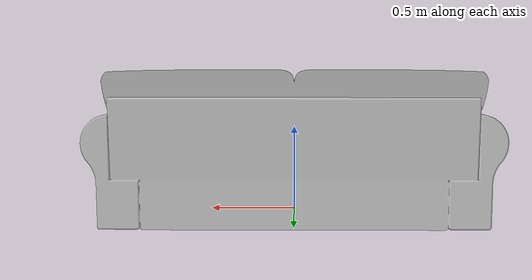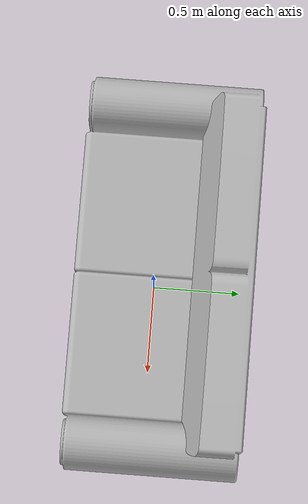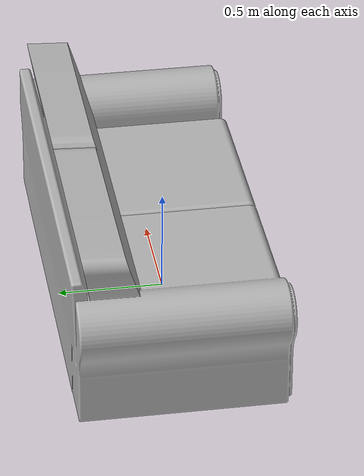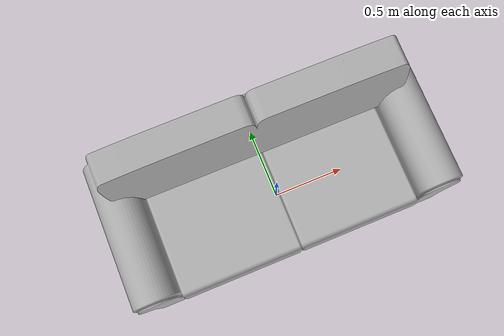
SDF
<?xml version="1.0"?>
<sdf version="1.4">
  <model name="couch">
    <static>false</static>
    <link name="link">

      <visual name="visual">
        <geometry>
          <mesh>
            <uri>model://couch/meshes/couch.dae</uri>
          </mesh>
        </geometry>
      </visual>

	<collision name="box">
	<pose>0 0.04 0.215 0 0 0</pose>
	<geometry>
	<box><size>2.1 1.02 0.43</size></box>
	</geometry>
	</collision>

	<collision name="box_2">
	<pose>0 0.39 0.42 0 0 0</pose>
	<geometry>
	<box><size>2.1 0.34 0.84</size></box>
	</geometry>
	</collision>

	<collision name="coll_2">
	<pose>0.965 0.0525 0.46 1.5708 0 0</pose>
	<geometry>
          <cylinder>
            <radius>0.155</radius>
            <length>0.98</length>
          </cylinder>
        </geometry>
	</collision>
	<collision name="coll_3">
	<pose>-0.965 0.0525 0.46 1.5708 0 0</pose>
	<geometry>
          <cylinder>
            <radius>0.155</radius>
            <length>0.98</length>
          </cylinder>
        </geometry>
	</collision>
    </link>
  </model>
</sdf>
